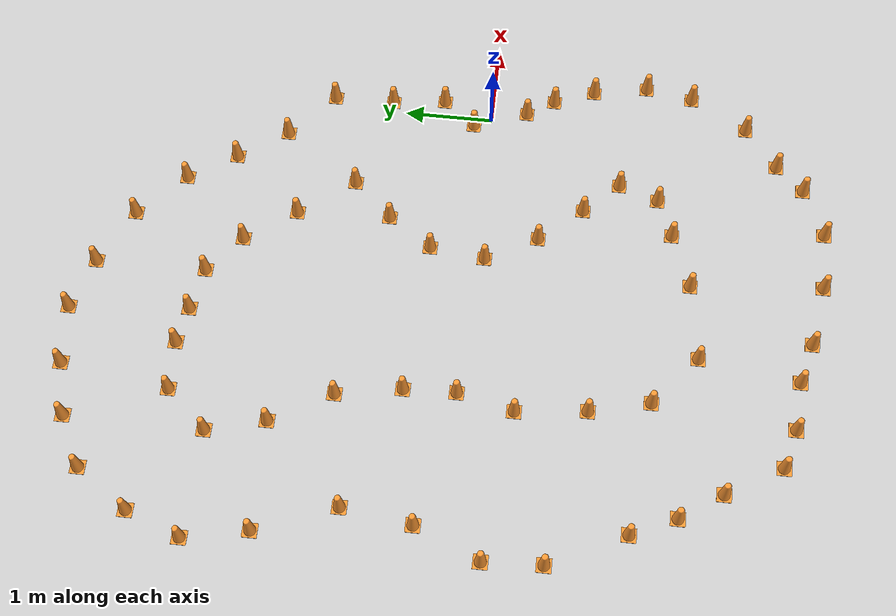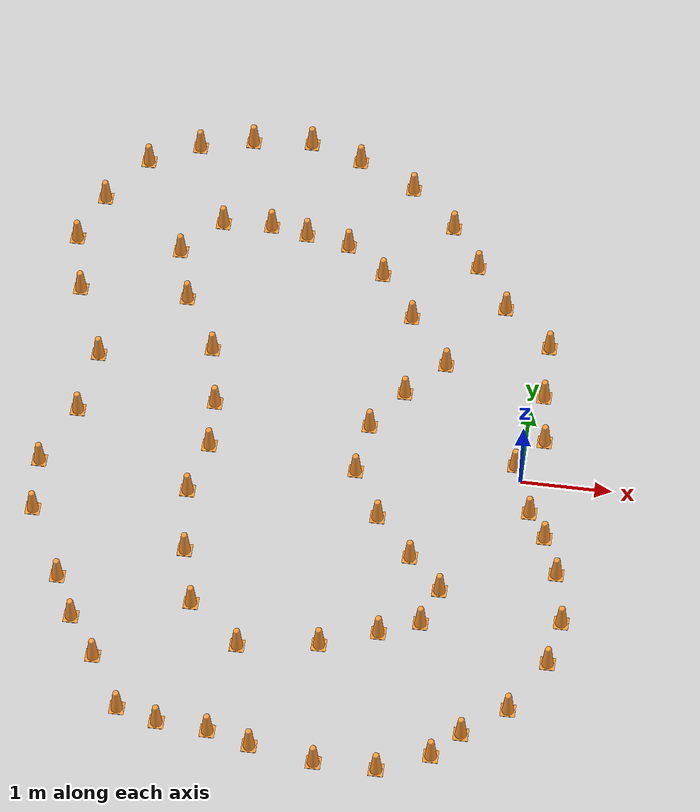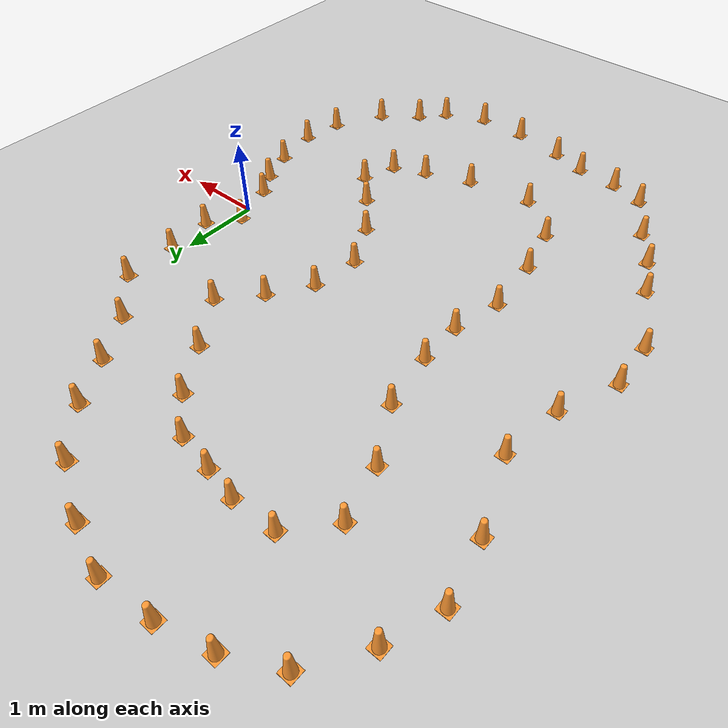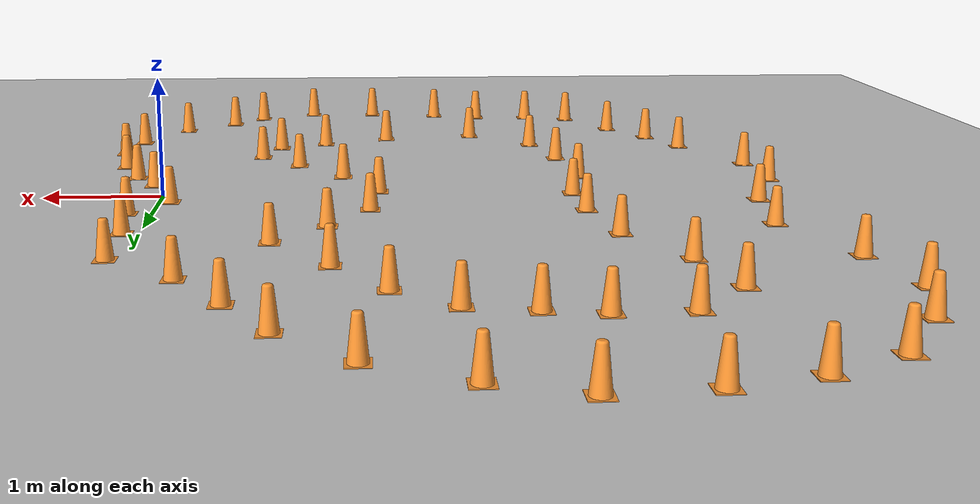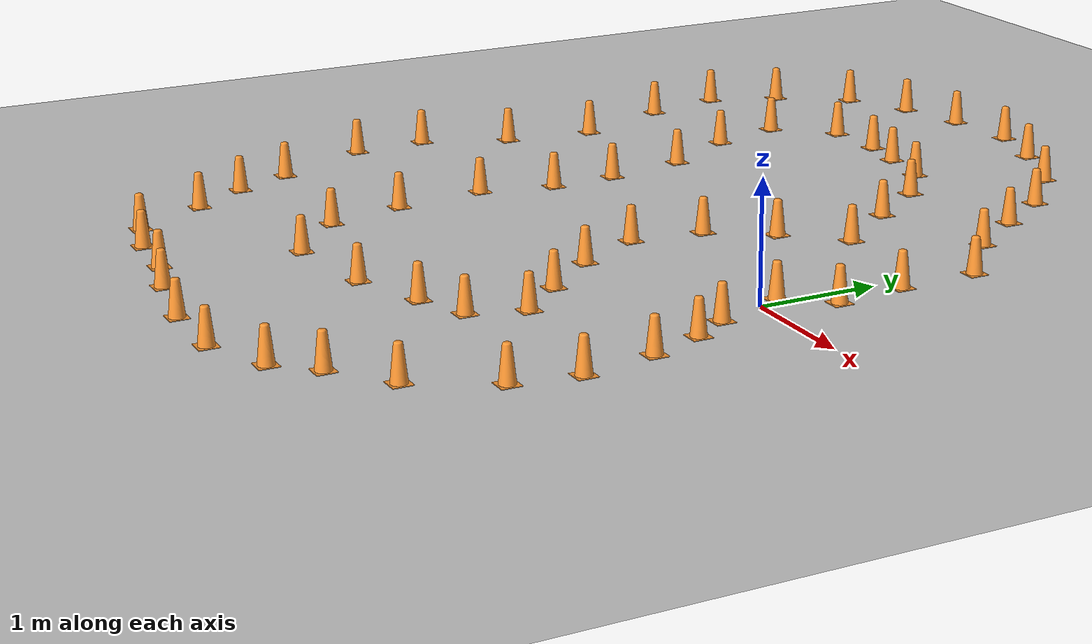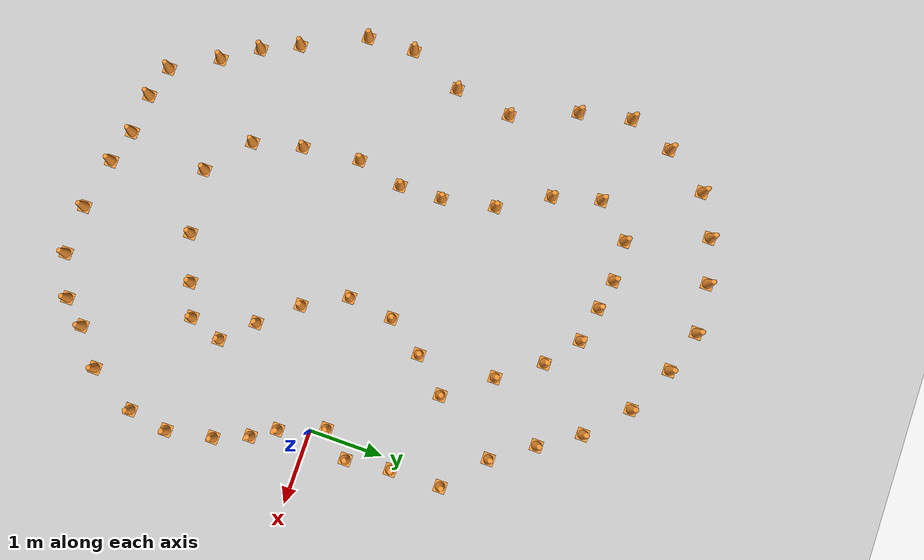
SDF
<sdf version="1.7">
 <world name="default">
  <light name="sun" type="directional">
   <pose>0 0 10 0 -0 0</pose>
   <diffuse>0.8 0.8 0.8 1</diffuse>
   <specular>0.2 0.2 0.2 1</specular>
   <attenuation>
    <range>1000</range>
    <constant>0.9</constant>
    <linear>0.01</linear>
    <quadratic>0.001</quadratic>
   </attenuation>
   <direction>-0.5 0.1 -0.9</direction>
   <spot><inner_angle>0</inner_angle><outer_angle>0</outer_angle><falloff>0</falloff></spot>
  </light>
  <model name="ground_plane">
   <static>1</static>
   <link name="link">
    <collision name="collision">
     <geometry><plane><normal>0 0 1</normal><size>100 100</size></plane></geometry>
     <surface>
      <contact><collide_bitmask>65535</collide_bitmask></contact>
      <friction><ode><mu>100</mu><mu2>50</mu2></ode></friction>
     </surface>
    </collision>
    <visual name="visual">
     <cast_shadows>0</cast_shadows>
     <geometry><plane><normal>0 0 1</normal><size>100 100</size></plane></geometry>
     <material>
      <script><uri>file://media/materials/scripts/gazebo.material</uri><name>Gazebo/Grey</name></script>
     </material>
    </visual>
   </link>
  </model>
  <gravity>0 0 -9.8</gravity>
  <magnetic_field>6e-06 2.3e-05 -4.2e-05</magnetic_field>
  <atmosphere type="adiabatic"/>
  <physics type="ode">
   <max_step_size>0.001</max_step_size>
   <real_time_factor>1</real_time_factor>
   <real_time_update_rate>1000</real_time_update_rate>
  </physics>
  <scene><ambient>0.4 0.4 0.4 1</ambient><background>0.7 0.7 0.7 1</background><shadows>1</shadows></scene>
  <spherical_coordinates>
   <surface_model>EARTH_WGS84</surface_model>
   <latitude_deg>0</latitude_deg>
   <longitude_deg>0</longitude_deg>
   <elevation>0</elevation>
   <heading_deg>0</heading_deg>
  </spherical_coordinates>
  <model name="cone">
   <pose>-2.78491 -2.52683 0.004991 1.5708 8e-06 1.2e-05</pose>
   <static>0</static>
   <link name="cone_link">
    <inertial>
     <mass>1</mass>
     <inertia><ixx>0.083</ixx><ixy>0</ixy><ixz>0</ixz><iyy>0.083</iyy><iyz>0</iyz><izz>0.083</izz></inertia>
    </inertial>
    <visual name="cone_visual">
     <material>
      <ambient>1 0.6 0.2 1</ambient>
      <diffuse>1 0.6 0.2 1</diffuse>
      <specular>0 0 0 0</specular>
      <emissive>0 0 0 1</emissive>
     </material>
     <geometry><mesh><uri>model://good_cone/meshes/cone.stl</uri><scale>0.001 0.001 0.001</scale></mesh></geometry>
    </visual>
    <collision name="cone_collision">
     <geometry><mesh><uri>model://good_cone/meshes/cone.stl</uri><scale>0.001 0.001 0.001</scale></mesh></geometry>
    </collision>
   </link>
  </model>
  <model name="cone_clone">
   <pose>-3.3555 -2.05031 0.005 1.5708 -0 8e-06</pose>
   <static>0</static>
   <link name="cone_link">
    <inertial>
     <mass>1</mass>
     <inertia><ixx>0.083</ixx><ixy>0</ixy><ixz>0</ixz><iyy>0.083</iyy><iyz>0</iyz><izz>0.083</izz></inertia>
    </inertial>
    <visual name="cone_visual">
     <material>
      <ambient>1 0.6 0.2 1</ambient>
      <diffuse>1 0.6 0.2 1</diffuse>
      <specular>0 0 0 0</specular>
      <emissive>0 0 0 1</emissive>
     </material>
     <geometry><mesh><uri>model://good_cone/meshes/cone.stl</uri><scale>0.001 0.001 0.001</scale></mesh></geometry>
    </visual>
    <collision name="cone_collision">
     <geometry><mesh><uri>model://good_cone/meshes/cone.stl</uri><scale>0.001 0.001 0.001</scale></mesh></geometry>
    </collision>
   </link>
  </model>
  <model name="cone_clone_0">
   <pose>-3.52375 -1.38131 0.004993 1.57079 3e-06 1.4e-05</pose>
   <static>0</static>
   <link name="cone_link">
    <inertial>
     <mass>1</mass>
     <inertia><ixx>0.083</ixx><ixy>0</ixy><ixz>0</ixz><iyy>0.083</iyy><iyz>0</iyz><izz>0.083</izz></inertia>
    </inertial>
    <visual name="cone_visual">
     <material>
      <ambient>1 0.6 0.2 1</ambient>
      <diffuse>1 0.6 0.2 1</diffuse>
      <specular>0 0 0 0</specular>
      <emissive>0 0 0 1</emissive>
     </material>
     <geometry><mesh><uri>model://good_cone/meshes/cone.stl</uri><scale>0.001 0.001 0.001</scale></mesh></geometry>
    </visual>
    <collision name="cone_collision">
     <geometry><mesh><uri>model://good_cone/meshes/cone.stl</uri><scale>0.001 0.001 0.001</scale></mesh></geometry>
    </collision>
   </link>
  </model>
  <model name="cone_clone_1">
   <pose>-3.61007 -0.599062 0.005 1.5708 -0 2.2e-05</pose>
   <static>0</static>
   <link name="cone_link">
    <inertial>
     <mass>1</mass>
     <inertia><ixx>0.083</ixx><ixy>0</ixy><ixz>0</ixz><iyy>0.083</iyy><iyz>0</iyz><izz>0.083</izz></inertia>
    </inertial>
    <visual name="cone_visual">
     <material>
      <ambient>1 0.6 0.2 1</ambient>
      <diffuse>1 0.6 0.2 1</diffuse>
      <specular>0 0 0 0</specular>
      <emissive>0 0 0 1</emissive>
     </material>
     <geometry><mesh><uri>model://good_cone/meshes/cone.stl</uri><scale>0.001 0.001 0.001</scale></mesh></geometry>
    </visual>
    <collision name="cone_collision">
     <geometry><mesh><uri>model://good_cone/meshes/cone.stl</uri><scale>0.001 0.001 0.001</scale></mesh></geometry>
    </collision>
   </link>
  </model>
  <model name="cone_clone_2">
   <pose>-3.46223 0.03074 0.005 1.5708 -4e-06 3e-06</pose>
   <static>0</static>
   <link name="cone_link">
    <inertial>
     <mass>1</mass>
     <inertia><ixx>0.083</ixx><ixy>0</ixy><ixz>0</ixz><iyy>0.083</iyy><iyz>0</iyz><izz>0.083</izz></inertia>
    </inertial>
    <visual name="cone_visual">
     <material>
      <ambient>1 0.6 0.2 1</ambient>
      <diffuse>1 0.6 0.2 1</diffuse>
      <specular>0 0 0 0</specular>
      <emissive>0 0 0 1</emissive>
     </material>
     <geometry><mesh><uri>model://good_cone/meshes/cone.stl</uri><scale>0.001 0.001 0.001</scale></mesh></geometry>
    </visual>
    <collision name="cone_collision">
     <geometry><mesh><uri>model://good_cone/meshes/cone.stl</uri><scale>0.001 0.001 0.001</scale></mesh></geometry>
    </collision>
   </link>
  </model>
  <model name="cone_clone_3">
   <pose>-3.48315 0.60871 0.004999 1.57079 -3e-06 1.8e-05</pose>
   <static>0</static>
   <link name="cone_link">
    <inertial>
     <mass>1</mass>
     <inertia><ixx>0.083</ixx><ixy>0</ixy><ixz>0</ixz><iyy>0.083</iyy><iyz>0</iyz><izz>0.083</izz></inertia>
    </inertial>
    <visual name="cone_visual">
     <material>
      <ambient>1 0.6 0.2 1</ambient>
      <diffuse>1 0.6 0.2 1</diffuse>
      <specular>0 0 0 0</specular>
      <emissive>0 0 0 1</emissive>
     </material>
     <geometry><mesh><uri>model://good_cone/meshes/cone.stl</uri><scale>0.001 0.001 0.001</scale></mesh></geometry>
    </visual>
    <collision name="cone_collision">
     <geometry><mesh><uri>model://good_cone/meshes/cone.stl</uri><scale>0.001 0.001 0.001</scale></mesh></geometry>
    </collision>
   </link>
  </model>
  <model name="cone_clone_4">
   <pose>-3.61662 1.33165 0.004999 1.57079 -4e-06 9e-06</pose>
   <static>0</static>
   <link name="cone_link">
    <inertial>
     <mass>1</mass>
     <inertia><ixx>0.083</ixx><ixy>0</ixy><ixz>0</ixz><iyy>0.083</iyy><iyz>0</iyz><izz>0.083</izz></inertia>
    </inertial>
    <visual name="cone_visual">
     <material>
      <ambient>1 0.6 0.2 1</ambient>
      <diffuse>1 0.6 0.2 1</diffuse>
      <specular>0 0 0 0</specular>
      <emissive>0 0 0 1</emissive>
     </material>
     <geometry><mesh><uri>model://good_cone/meshes/cone.stl</uri><scale>0.001 0.001 0.001</scale></mesh></geometry>
    </visual>
    <collision name="cone_collision">
     <geometry><mesh><uri>model://good_cone/meshes/cone.stl</uri><scale>0.001 0.001 0.001</scale></mesh></geometry>
    </collision>
   </link>
  </model>
  <model name="cone_clone_5">
   <pose>-4 2 0.005 1.5708 -5e-06 1.6e-05</pose>
   <static>0</static>
   <link name="cone_link">
    <inertial>
     <mass>1</mass>
     <inertia><ixx>0.083</ixx><ixy>0</ixy><ixz>0</ixz><iyy>0.083</iyy><iyz>0</iyz><izz>0.083</izz></inertia>
    </inertial>
    <visual name="cone_visual">
     <material>
      <ambient>1 0.6 0.2 1</ambient>
      <diffuse>1 0.6 0.2 1</diffuse>
      <specular>0 0 0 0</specular>
      <emissive>0 0 0 1</emissive>
     </material>
     <geometry><mesh><uri>model://good_cone/meshes/cone.stl</uri><scale>0.001 0.001 0.001</scale></mesh></geometry>
    </visual>
    <collision name="cone_collision">
     <geometry><mesh><uri>model://good_cone/meshes/cone.stl</uri><scale>0.001 0.001 0.001</scale></mesh></geometry>
    </collision>
   </link>
  </model>
  <model name="cone_clone_6">
   <pose>-4.17535 2.64912 0.005 1.5708 -0 1.2e-05</pose>
   <static>0</static>
   <link name="cone_link">
    <inertial>
     <mass>1</mass>
     <inertia><ixx>0.083</ixx><ixy>0</ixy><ixz>0</ixz><iyy>0.083</iyy><iyz>0</iyz><izz>0.083</izz></inertia>
    </inertial>
    <visual name="cone_visual">
     <material>
      <ambient>1 0.6 0.2 1</ambient>
      <diffuse>1 0.6 0.2 1</diffuse>
      <specular>0 0 0 0</specular>
      <emissive>0 0 0 1</emissive>
     </material>
     <geometry><mesh><uri>model://good_cone/meshes/cone.stl</uri><scale>0.001 0.001 0.001</scale></mesh></geometry>
    </visual>
    <collision name="cone_collision">
     <geometry><mesh><uri>model://good_cone/meshes/cone.stl</uri><scale>0.001 0.001 0.001</scale></mesh></geometry>
    </collision>
   </link>
  </model>
  <model name="cone_clone_7">
   <pose>-3.75192 3.11204 0.005 1.5708 -0 1.1e-05</pose>
   <static>0</static>
   <link name="cone_link">
    <inertial>
     <mass>1</mass>
     <inertia><ixx>0.083</ixx><ixy>0</ixy><ixz>0</ixz><iyy>0.083</iyy><iyz>0</iyz><izz>0.083</izz></inertia>
    </inertial>
    <visual name="cone_visual">
     <material>
      <ambient>1 0.6 0.2 1</ambient>
      <diffuse>1 0.6 0.2 1</diffuse>
      <specular>0 0 0 0</specular>
      <emissive>0 0 0 1</emissive>
     </material>
     <geometry><mesh><uri>model://good_cone/meshes/cone.stl</uri><scale>0.001 0.001 0.001</scale></mesh></geometry>
    </visual>
    <collision name="cone_collision">
     <geometry><mesh><uri>model://good_cone/meshes/cone.stl</uri><scale>0.001 0.001 0.001</scale></mesh></geometry>
    </collision>
   </link>
  </model>
  <model name="cone_clone_8">
   <pose>-3.19866 3.1344 0.004999 1.57079 -3e-06 3.7e-05</pose>
   <static>0</static>
   <link name="cone_link">
    <inertial>
     <mass>1</mass>
     <inertia><ixx>0.083</ixx><ixy>0</ixy><ixz>0</ixz><iyy>0.083</iyy><iyz>0</iyz><izz>0.083</izz></inertia>
    </inertial>
    <visual name="cone_visual">
     <material>
      <ambient>1 0.6 0.2 1</ambient>
      <diffuse>1 0.6 0.2 1</diffuse>
      <specular>0 0 0 0</specular>
      <emissive>0 0 0 1</emissive>
     </material>
     <geometry><mesh><uri>model://good_cone/meshes/cone.stl</uri><scale>0.001 0.001 0.001</scale></mesh></geometry>
    </visual>
    <collision name="cone_collision">
     <geometry><mesh><uri>model://good_cone/meshes/cone.stl</uri><scale>0.001 0.001 0.001</scale></mesh></geometry>
    </collision>
   </link>
  </model>
  <model name="cone_clone_9">
   <pose>-2.29404 2.96981 0.005 1.5708 -0 1.5e-05</pose>
   <static>0</static>
   <link name="cone_link">
    <inertial>
     <mass>1</mass>
     <inertia><ixx>0.083</ixx><ixy>0</ixy><ixz>0</ixz><iyy>0.083</iyy><iyz>0</iyz><izz>0.083</izz></inertia>
    </inertial>
    <visual name="cone_visual">
     <material>
      <ambient>1 0.6 0.2 1</ambient>
      <diffuse>1 0.6 0.2 1</diffuse>
      <specular>0 0 0 0</specular>
      <emissive>0 0 0 1</emissive>
     </material>
     <geometry><mesh><uri>model://good_cone/meshes/cone.stl</uri><scale>0.001 0.001 0.001</scale></mesh></geometry>
    </visual>
    <collision name="cone_collision">
     <geometry><mesh><uri>model://good_cone/meshes/cone.stl</uri><scale>0.001 0.001 0.001</scale></mesh></geometry>
    </collision>
   </link>
  </model>
  <model name="cone_clone_10">
   <pose>-2.78267 3.0606 0.004997 1.5708 -3e-06 1.1e-05</pose>
   <static>0</static>
   <link name="cone_link">
    <inertial>
     <mass>1</mass>
     <inertia><ixx>0.083</ixx><ixy>0</ixy><ixz>0</ixz><iyy>0.083</iyy><iyz>0</iyz><izz>0.083</izz></inertia>
    </inertial>
    <visual name="cone_visual">
     <material>
      <ambient>1 0.6 0.2 1</ambient>
      <diffuse>1 0.6 0.2 1</diffuse>
      <specular>0 0 0 0</specular>
      <emissive>0 0 0 1</emissive>
     </material>
     <geometry><mesh><uri>model://good_cone/meshes/cone.stl</uri><scale>0.001 0.001 0.001</scale></mesh></geometry>
    </visual>
    <collision name="cone_collision">
     <geometry><mesh><uri>model://good_cone/meshes/cone.stl</uri><scale>0.001 0.001 0.001</scale></mesh></geometry>
    </collision>
   </link>
  </model>
  <model name="cone_clone_11">
   <pose>-1.8554 2.61594 0.004999 1.57079 -5e-06 1.7e-05</pose>
   <static>0</static>
   <link name="cone_link">
    <inertial>
     <mass>1</mass>
     <inertia><ixx>0.083</ixx><ixy>0</ixy><ixz>0</ixz><iyy>0.083</iyy><iyz>0</iyz><izz>0.083</izz></inertia>
    </inertial>
    <visual name="cone_visual">
     <material>
      <ambient>1 0.6 0.2 1</ambient>
      <diffuse>1 0.6 0.2 1</diffuse>
      <specular>0 0 0 0</specular>
      <emissive>0 0 0 1</emissive>
     </material>
     <geometry><mesh><uri>model://good_cone/meshes/cone.stl</uri><scale>0.001 0.001 0.001</scale></mesh></geometry>
    </visual>
    <collision name="cone_collision">
     <geometry><mesh><uri>model://good_cone/meshes/cone.stl</uri><scale>0.001 0.001 0.001</scale></mesh></geometry>
    </collision>
   </link>
  </model>
  <model name="cone_clone_12">
   <pose>-1.45845 2.06115 0.004999 1.57079 -5e-06 1e-05</pose>
   <static>0</static>
   <link name="cone_link">
    <inertial>
     <mass>1</mass>
     <inertia><ixx>0.083</ixx><ixy>0</ixy><ixz>0</ixz><iyy>0.083</iyy><iyz>0</iyz><izz>0.083</izz></inertia>
    </inertial>
    <visual name="cone_visual">
     <material>
      <ambient>1 0.6 0.2 1</ambient>
      <diffuse>1 0.6 0.2 1</diffuse>
      <specular>0 0 0 0</specular>
      <emissive>0 0 0 1</emissive>
     </material>
     <geometry><mesh><uri>model://good_cone/meshes/cone.stl</uri><scale>0.001 0.001 0.001</scale></mesh></geometry>
    </visual>
    <collision name="cone_collision">
     <geometry><mesh><uri>model://good_cone/meshes/cone.stl</uri><scale>0.001 0.001 0.001</scale></mesh></geometry>
    </collision>
   </link>
  </model>
  <model name="cone_clone_13">
   <pose>-1 1.45664 0.004999 1.57079 -3e-06 1.9e-05</pose>
   <static>0</static>
   <link name="cone_link">
    <inertial>
     <mass>1</mass>
     <inertia><ixx>0.083</ixx><ixy>0</ixy><ixz>0</ixz><iyy>0.083</iyy><iyz>0</iyz><izz>0.083</izz></inertia>
    </inertial>
    <visual name="cone_visual">
     <material>
      <ambient>1 0.6 0.2 1</ambient>
      <diffuse>1 0.6 0.2 1</diffuse>
      <specular>0 0 0 0</specular>
      <emissive>0 0 0 1</emissive>
     </material>
     <geometry><mesh><uri>model://good_cone/meshes/cone.stl</uri><scale>0.001 0.001 0.001</scale></mesh></geometry>
    </visual>
    <collision name="cone_collision">
     <geometry><mesh><uri>model://good_cone/meshes/cone.stl</uri><scale>0.001 0.001 0.001</scale></mesh></geometry>
    </collision>
   </link>
  </model>
  <model name="cone_clone_14">
   <pose>-1.40885 1.01376 0.005 1.5708 -0 7e-06</pose>
   <static>0</static>
   <link name="cone_link">
    <inertial>
     <mass>1</mass>
     <inertia><ixx>0.083</ixx><ixy>0</ixy><ixz>0</ixz><iyy>0.083</iyy><iyz>0</iyz><izz>0.083</izz></inertia>
    </inertial>
    <visual name="cone_visual">
     <material>
      <ambient>1 0.6 0.2 1</ambient>
      <diffuse>1 0.6 0.2 1</diffuse>
      <specular>0 0 0 0</specular>
      <emissive>0 0 0 1</emissive>
     </material>
     <geometry><mesh><uri>model://good_cone/meshes/cone.stl</uri><scale>0.001 0.001 0.001</scale></mesh></geometry>
    </visual>
    <collision name="cone_collision">
     <geometry><mesh><uri>model://good_cone/meshes/cone.stl</uri><scale>0.001 0.001 0.001</scale></mesh></geometry>
    </collision>
   </link>
  </model>
  <model name="cone_clone_15">
   <pose>-1.74125 0.515719 0.004999 1.57079 -3e-06 3.8e-05</pose>
   <static>0</static>
   <link name="cone_link">
    <inertial>
     <mass>1</mass>
     <inertia><ixx>0.083</ixx><ixy>0</ixy><ixz>0</ixz><iyy>0.083</iyy><iyz>0</iyz><izz>0.083</izz></inertia>
    </inertial>
    <visual name="cone_visual">
     <material>
      <ambient>1 0.6 0.2 1</ambient>
      <diffuse>1 0.6 0.2 1</diffuse>
      <specular>0 0 0 0</specular>
      <emissive>0 0 0 1</emissive>
     </material>
     <geometry><mesh><uri>model://good_cone/meshes/cone.stl</uri><scale>0.001 0.001 0.001</scale></mesh></geometry>
    </visual>
    <collision name="cone_collision">
     <geometry><mesh><uri>model://good_cone/meshes/cone.stl</uri><scale>0.001 0.001 0.001</scale></mesh></geometry>
    </collision>
   </link>
  </model>
  <model name="cone_clone_16">
   <pose>-1.81694 -0.102662 0.004999 1.57079 -4e-06 9e-06</pose>
   <static>0</static>
   <link name="cone_link">
    <inertial>
     <mass>1</mass>
     <inertia><ixx>0.083</ixx><ixy>0</ixy><ixz>0</ixz><iyy>0.083</iyy><iyz>0</iyz><izz>0.083</izz></inertia>
    </inertial>
    <visual name="cone_visual">
     <material>
      <ambient>1 0.6 0.2 1</ambient>
      <diffuse>1 0.6 0.2 1</diffuse>
      <specular>0 0 0 0</specular>
      <emissive>0 0 0 1</emissive>
     </material>
     <geometry><mesh><uri>model://good_cone/meshes/cone.stl</uri><scale>0.001 0.001 0.001</scale></mesh></geometry>
    </visual>
    <collision name="cone_collision">
     <geometry><mesh><uri>model://good_cone/meshes/cone.stl</uri><scale>0.001 0.001 0.001</scale></mesh></geometry>
    </collision>
   </link>
  </model>
  <model name="cone_clone_17">
   <pose>-1.5022 -0.676299 0.004999 1.57079 -3e-06 1.4e-05</pose>
   <static>0</static>
   <link name="cone_link">
    <inertial>
     <mass>1</mass>
     <inertia><ixx>0.083</ixx><ixy>0</ixy><ixz>0</ixz><iyy>0.083</iyy><iyz>0</iyz><izz>0.083</izz></inertia>
    </inertial>
    <visual name="cone_visual">
     <material>
      <ambient>1 0.6 0.2 1</ambient>
      <diffuse>1 0.6 0.2 1</diffuse>
      <specular>0 0 0 0</specular>
      <emissive>0 0 0 1</emissive>
     </material>
     <geometry><mesh><uri>model://good_cone/meshes/cone.stl</uri><scale>0.001 0.001 0.001</scale></mesh></geometry>
    </visual>
    <collision name="cone_collision">
     <geometry><mesh><uri>model://good_cone/meshes/cone.stl</uri><scale>0.001 0.001 0.001</scale></mesh></geometry>
    </collision>
   </link>
  </model>
  <model name="cone_clone_18">
   <pose>-1.08782 -1.15503 0.004991 1.5708 4e-06 9e-06</pose>
   <static>0</static>
   <link name="cone_link">
    <inertial>
     <mass>1</mass>
     <inertia><ixx>0.083</ixx><ixy>0</ixy><ixz>0</ixz><iyy>0.083</iyy><iyz>0</iyz><izz>0.083</izz></inertia>
    </inertial>
    <visual name="cone_visual">
     <material>
      <ambient>1 0.6 0.2 1</ambient>
      <diffuse>1 0.6 0.2 1</diffuse>
      <specular>0 0 0 0</specular>
      <emissive>0 0 0 1</emissive>
     </material>
     <geometry><mesh><uri>model://good_cone/meshes/cone.stl</uri><scale>0.001 0.001 0.001</scale></mesh></geometry>
    </visual>
    <collision name="cone_collision">
     <geometry><mesh><uri>model://good_cone/meshes/cone.stl</uri><scale>0.001 0.001 0.001</scale></mesh></geometry>
    </collision>
   </link>
  </model>
  <model name="cone_clone_19">
   <pose>-0.7177 -1.54234 0.004998 1.5708 -0 1e-06</pose>
   <static>0</static>
   <link name="cone_link">
    <inertial>
     <mass>1</mass>
     <inertia><ixx>0.083</ixx><ixy>0</ixy><ixz>0</ixz><iyy>0.083</iyy><iyz>0</iyz><izz>0.083</izz></inertia>
    </inertial>
    <visual name="cone_visual">
     <material>
      <ambient>1 0.6 0.2 1</ambient>
      <diffuse>1 0.6 0.2 1</diffuse>
      <specular>0 0 0 0</specular>
      <emissive>0 0 0 1</emissive>
     </material>
     <geometry><mesh><uri>model://good_cone/meshes/cone.stl</uri><scale>0.001 0.001 0.001</scale></mesh></geometry>
    </visual>
    <collision name="cone_collision">
     <geometry><mesh><uri>model://good_cone/meshes/cone.stl</uri><scale>0.001 0.001 0.001</scale></mesh></geometry>
    </collision>
   </link>
  </model>
  <model name="cone_clone_20">
   <pose>-0.869473 -1.9873 0.005 1.5708 0 6e-06</pose>
   <static>0</static>
   <link name="cone_link">
    <inertial>
     <mass>1</mass>
     <inertia><ixx>0.083</ixx><ixy>0</ixy><ixz>0</ixz><iyy>0.083</iyy><iyz>0</iyz><izz>0.083</izz></inertia>
    </inertial>
    <visual name="cone_visual">
     <material>
      <ambient>1 0.6 0.2 1</ambient>
      <diffuse>1 0.6 0.2 1</diffuse>
      <specular>0 0 0 0</specular>
      <emissive>0 0 0 1</emissive>
     </material>
     <geometry><mesh><uri>model://good_cone/meshes/cone.stl</uri><scale>0.001 0.001 0.001</scale></mesh></geometry>
    </visual>
    <collision name="cone_collision">
     <geometry><mesh><uri>model://good_cone/meshes/cone.stl</uri><scale>0.001 0.001 0.001</scale></mesh></geometry>
    </collision>
   </link>
  </model>
  <model name="cone_clone_21">
   <pose>-1.30309 -2.16912 0.004999 1.57079 -3e-06 1.4e-05</pose>
   <static>0</static>
   <link name="cone_link">
    <inertial>
     <mass>1</mass>
     <inertia><ixx>0.083</ixx><ixy>0</ixy><ixz>0</ixz><iyy>0.083</iyy><iyz>0</iyz><izz>0.083</izz></inertia>
    </inertial>
    <visual name="cone_visual">
     <material>
      <ambient>1 0.6 0.2 1</ambient>
      <diffuse>1 0.6 0.2 1</diffuse>
      <specular>0 0 0 0</specular>
      <emissive>0 0 0 1</emissive>
     </material>
     <geometry><mesh><uri>model://good_cone/meshes/cone.stl</uri><scale>0.001 0.001 0.001</scale></mesh></geometry>
    </visual>
    <collision name="cone_collision">
     <geometry><mesh><uri>model://good_cone/meshes/cone.stl</uri><scale>0.001 0.001 0.001</scale></mesh></geometry>
    </collision>
   </link>
  </model>
  <model name="cone_clone_22">
   <pose>-1.91642 -2.40087 0.004999 1.57079 -3e-06 1.1e-05</pose>
   <static>0</static>
   <link name="cone_link">
    <inertial>
     <mass>1</mass>
     <inertia><ixx>0.083</ixx><ixy>0</ixy><ixz>0</ixz><iyy>0.083</iyy><iyz>0</iyz><izz>0.083</izz></inertia>
    </inertial>
    <visual name="cone_visual">
     <material>
      <ambient>1 0.6 0.2 1</ambient>
      <diffuse>1 0.6 0.2 1</diffuse>
      <specular>0 0 0 0</specular>
      <emissive>0 0 0 1</emissive>
     </material>
     <geometry><mesh><uri>model://good_cone/meshes/cone.stl</uri><scale>0.001 0.001 0.001</scale></mesh></geometry>
    </visual>
    <collision name="cone_collision">
     <geometry><mesh><uri>model://good_cone/meshes/cone.stl</uri><scale>0.001 0.001 0.001</scale></mesh></geometry>
    </collision>
   </link>
  </model>
  <model name="cone_clone_23">
   <pose>-0.087243 0.192954 0.004999 1.57079 -5e-06 1.4e-05</pose>
   <static>0</static>
   <link name="cone_link">
    <inertial>
     <mass>1</mass>
     <inertia><ixx>0.083</ixx><ixy>0</ixy><ixz>0</ixz><iyy>0.083</iyy><iyz>0</iyz><izz>0.083</izz></inertia>
    </inertial>
    <visual name="cone_visual">
     <material>
      <ambient>1 0.6 0.2 1</ambient>
      <diffuse>1 0.6 0.2 1</diffuse>
      <specular>0 0 0 0</specular>
      <emissive>0 0 0 1</emissive>
     </material>
     <geometry><mesh><uri>model://good_cone/meshes/cone.stl</uri><scale>0.001 0.001 0.001</scale></mesh></geometry>
    </visual>
    <collision name="cone_collision">
     <geometry><mesh><uri>model://good_cone/meshes/cone.stl</uri><scale>0.001 0.001 0.001</scale></mesh></geometry>
    </collision>
   </link>
  </model>
  <model name="cone_clone_24">
   <pose>0.200527 0.560924 0.004999 1.57079 -3e-06 3.4e-05</pose>
   <static>0</static>
   <link name="cone_link">
    <inertial>
     <mass>1</mass>
     <inertia><ixx>0.083</ixx><ixy>0</ixy><ixz>0</ixz><iyy>0.083</iyy><iyz>0</iyz><izz>0.083</izz></inertia>
    </inertial>
    <visual name="cone_visual">
     <material>
      <ambient>1 0.6 0.2 1</ambient>
      <diffuse>1 0.6 0.2 1</diffuse>
      <specular>0 0 0 0</specular>
      <emissive>0 0 0 1</emissive>
     </material>
     <geometry><mesh><uri>model://good_cone/meshes/cone.stl</uri><scale>0.001 0.001 0.001</scale></mesh></geometry>
    </visual>
    <collision name="cone_collision">
     <geometry><mesh><uri>model://good_cone/meshes/cone.stl</uri><scale>0.001 0.001 0.001</scale></mesh></geometry>
    </collision>
   </link>
  </model>
  <model name="cone_clone_25">
   <pose>0.131548 1.16236 0.005 1.5708 2e-06 7e-06</pose>
   <static>0</static>
   <link name="cone_link">
    <inertial>
     <mass>1</mass>
     <inertia><ixx>0.083</ixx><ixy>0</ixy><ixz>0</ixz><iyy>0.083</iyy><iyz>0</iyz><izz>0.083</izz></inertia>
    </inertial>
    <visual name="cone_visual">
     <material>
      <ambient>1 0.6 0.2 1</ambient>
      <diffuse>1 0.6 0.2 1</diffuse>
      <specular>0 0 0 0</specular>
      <emissive>0 0 0 1</emissive>
     </material>
     <geometry><mesh><uri>model://good_cone/meshes/cone.stl</uri><scale>0.001 0.001 0.001</scale></mesh></geometry>
    </visual>
    <collision name="cone_collision">
     <geometry><mesh><uri>model://good_cone/meshes/cone.stl</uri><scale>0.001 0.001 0.001</scale></mesh></geometry>
    </collision>
   </link>
  </model>
  <model name="cone_clone_26">
   <pose>0.118113 1.84346 0.005 1.5708 -0 3e-06</pose>
   <static>0</static>
   <link name="cone_link">
    <inertial>
     <mass>1</mass>
     <inertia><ixx>0.083</ixx><ixy>0</ixy><ixz>0</ixz><iyy>0.083</iyy><iyz>0</iyz><izz>0.083</izz></inertia>
    </inertial>
    <visual name="cone_visual">
     <material>
      <ambient>1 0.6 0.2 1</ambient>
      <diffuse>1 0.6 0.2 1</diffuse>
      <specular>0 0 0 0</specular>
      <emissive>0 0 0 1</emissive>
     </material>
     <geometry><mesh><uri>model://good_cone/meshes/cone.stl</uri><scale>0.001 0.001 0.001</scale></mesh></geometry>
    </visual>
    <collision name="cone_collision">
     <geometry><mesh><uri>model://good_cone/meshes/cone.stl</uri><scale>0.001 0.001 0.001</scale></mesh></geometry>
    </collision>
   </link>
  </model>
  <model name="cone_clone_27">
   <pose>-0.425479 2.32124 0.004999 1.57079 -3e-06 1.2e-05</pose>
   <static>0</static>
   <link name="cone_link">
    <inertial>
     <mass>1</mass>
     <inertia><ixx>0.083</ixx><ixy>0</ixy><ixz>0</ixz><iyy>0.083</iyy><iyz>0</iyz><izz>0.083</izz></inertia>
    </inertial>
    <visual name="cone_visual">
     <material>
      <ambient>1 0.6 0.2 1</ambient>
      <diffuse>1 0.6 0.2 1</diffuse>
      <specular>0 0 0 0</specular>
      <emissive>0 0 0 1</emissive>
     </material>
     <geometry><mesh><uri>model://good_cone/meshes/cone.stl</uri><scale>0.001 0.001 0.001</scale></mesh></geometry>
    </visual>
    <collision name="cone_collision">
     <geometry><mesh><uri>model://good_cone/meshes/cone.stl</uri><scale>0.001 0.001 0.001</scale></mesh></geometry>
    </collision>
   </link>
  </model>
  <model name="cone_clone_28">
   <pose>-0.799692 2.85913 0.004991 1.5708 4e-06 1e-06</pose>
   <static>0</static>
   <link name="cone_link">
    <inertial>
     <mass>1</mass>
     <inertia><ixx>0.083</ixx><ixy>0</ixy><ixz>0</ixz><iyy>0.083</iyy><iyz>0</iyz><izz>0.083</izz></inertia>
    </inertial>
    <visual name="cone_visual">
     <material>
      <ambient>1 0.6 0.2 1</ambient>
      <diffuse>1 0.6 0.2 1</diffuse>
      <specular>0 0 0 0</specular>
      <emissive>0 0 0 1</emissive>
     </material>
     <geometry><mesh><uri>model://good_cone/meshes/cone.stl</uri><scale>0.001 0.001 0.001</scale></mesh></geometry>
    </visual>
    <collision name="cone_collision">
     <geometry><mesh><uri>model://good_cone/meshes/cone.stl</uri><scale>0.001 0.001 0.001</scale></mesh></geometry>
    </collision>
   </link>
  </model>
  <model name="cone_clone_29">
   <pose>-1.13889 3.38358 0.004999 1.57079 -3e-06 3.2e-05</pose>
   <static>0</static>
   <link name="cone_link">
    <inertial>
     <mass>1</mass>
     <inertia><ixx>0.083</ixx><ixy>0</ixy><ixz>0</ixz><iyy>0.083</iyy><iyz>0</iyz><izz>0.083</izz></inertia>
    </inertial>
    <visual name="cone_visual">
     <material>
      <ambient>1 0.6 0.2 1</ambient>
      <diffuse>1 0.6 0.2 1</diffuse>
      <specular>0 0 0 0</specular>
      <emissive>0 0 0 1</emissive>
     </material>
     <geometry><mesh><uri>model://good_cone/meshes/cone.stl</uri><scale>0.001 0.001 0.001</scale></mesh></geometry>
    </visual>
    <collision name="cone_collision">
     <geometry><mesh><uri>model://good_cone/meshes/cone.stl</uri><scale>0.001 0.001 0.001</scale></mesh></geometry>
    </collision>
   </link>
  </model>
  <model name="cone_clone_30">
   <pose>-1.66091 3.8791 0.004997 1.5708 -4e-06 1e-06</pose>
   <static>0</static>
   <link name="cone_link">
    <inertial>
     <mass>1</mass>
     <inertia><ixx>0.083</ixx><ixy>0</ixy><ixz>0</ixz><iyy>0.083</iyy><iyz>0</iyz><izz>0.083</izz></inertia>
    </inertial>
    <visual name="cone_visual">
     <material>
      <ambient>1 0.6 0.2 1</ambient>
      <diffuse>1 0.6 0.2 1</diffuse>
      <specular>0 0 0 0</specular>
      <emissive>0 0 0 1</emissive>
     </material>
     <geometry><mesh><uri>model://good_cone/meshes/cone.stl</uri><scale>0.001 0.001 0.001</scale></mesh></geometry>
    </visual>
    <collision name="cone_collision">
     <geometry><mesh><uri>model://good_cone/meshes/cone.stl</uri><scale>0.001 0.001 0.001</scale></mesh></geometry>
    </collision>
   </link>
  </model>
  <model name="cone_clone_31">
   <pose>-2.31337 4.19965 0.004997 1.5708 -3e-06 1e-06</pose>
   <static>0</static>
   <link name="cone_link">
    <inertial>
     <mass>1</mass>
     <inertia><ixx>0.083</ixx><ixy>0</ixy><ixz>0</ixz><iyy>0.083</iyy><iyz>0</iyz><izz>0.083</izz></inertia>
    </inertial>
    <visual name="cone_visual">
     <material>
      <ambient>1 0.6 0.2 1</ambient>
      <diffuse>1 0.6 0.2 1</diffuse>
      <specular>0 0 0 0</specular>
      <emissive>0 0 0 1</emissive>
     </material>
     <geometry><mesh><uri>model://good_cone/meshes/cone.stl</uri><scale>0.001 0.001 0.001</scale></mesh></geometry>
    </visual>
    <collision name="cone_collision">
     <geometry><mesh><uri>model://good_cone/meshes/cone.stl</uri><scale>0.001 0.001 0.001</scale></mesh></geometry>
    </collision>
   </link>
  </model>
  <model name="cone_clone_32">
   <pose>-2.90333 4.38608 0.004999 1.57079 -3e-06 2.4e-05</pose>
   <static>0</static>
   <link name="cone_link">
    <inertial>
     <mass>1</mass>
     <inertia><ixx>0.083</ixx><ixy>0</ixy><ixz>0</ixz><iyy>0.083</iyy><iyz>0</iyz><izz>0.083</izz></inertia>
    </inertial>
    <visual name="cone_visual">
     <material>
      <ambient>1 0.6 0.2 1</ambient>
      <diffuse>1 0.6 0.2 1</diffuse>
      <specular>0 0 0 0</specular>
      <emissive>0 0 0 1</emissive>
     </material>
     <geometry><mesh><uri>model://good_cone/meshes/cone.stl</uri><scale>0.001 0.001 0.001</scale></mesh></geometry>
    </visual>
    <collision name="cone_collision">
     <geometry><mesh><uri>model://good_cone/meshes/cone.stl</uri><scale>0.001 0.001 0.001</scale></mesh></geometry>
    </collision>
   </link>
  </model>
  <model name="cone_clone_33">
   <pose>-3.57475 4.32613 0.004999 1.57079 -3e-06 2.6e-05</pose>
   <static>0</static>
   <link name="cone_link">
    <inertial>
     <mass>1</mass>
     <inertia><ixx>0.083</ixx><ixy>0</ixy><ixz>0</ixz><iyy>0.083</iyy><iyz>0</iyz><izz>0.083</izz></inertia>
    </inertial>
    <visual name="cone_visual">
     <material>
      <ambient>1 0.6 0.2 1</ambient>
      <diffuse>1 0.6 0.2 1</diffuse>
      <specular>0 0 0 0</specular>
      <emissive>0 0 0 1</emissive>
     </material>
     <geometry><mesh><uri>model://good_cone/meshes/cone.stl</uri><scale>0.001 0.001 0.001</scale></mesh></geometry>
    </visual>
    <collision name="cone_collision">
     <geometry><mesh><uri>model://good_cone/meshes/cone.stl</uri><scale>0.001 0.001 0.001</scale></mesh></geometry>
    </collision>
   </link>
  </model>
  <model name="cone_clone_34">
   <pose>-4.17311 4.17317 0.005 1.5708 -0 2e-05</pose>
   <static>0</static>
   <link name="cone_link">
    <inertial>
     <mass>1</mass>
     <inertia><ixx>0.083</ixx><ixy>0</ixy><ixz>0</ixz><iyy>0.083</iyy><iyz>0</iyz><izz>0.083</izz></inertia>
    </inertial>
    <visual name="cone_visual">
     <material>
      <ambient>1 0.6 0.2 1</ambient>
      <diffuse>1 0.6 0.2 1</diffuse>
      <specular>0 0 0 0</specular>
      <emissive>0 0 0 1</emissive>
     </material>
     <geometry><mesh><uri>model://good_cone/meshes/cone.stl</uri><scale>0.001 0.001 0.001</scale></mesh></geometry>
    </visual>
    <collision name="cone_collision">
     <geometry><mesh><uri>model://good_cone/meshes/cone.stl</uri><scale>0.001 0.001 0.001</scale></mesh></geometry>
    </collision>
   </link>
  </model>
  <model name="cone_clone_35">
   <pose>-4.73072 3.88902 0.005 1.5708 2e-06 5e-06</pose>
   <static>0</static>
   <link name="cone_link">
    <inertial>
     <mass>1</mass>
     <inertia><ixx>0.083</ixx><ixy>0</ixy><ixz>0</ixz><iyy>0.083</iyy><iyz>0</iyz><izz>0.083</izz></inertia>
    </inertial>
    <visual name="cone_visual">
     <material>
      <ambient>1 0.6 0.2 1</ambient>
      <diffuse>1 0.6 0.2 1</diffuse>
      <specular>0 0 0 0</specular>
      <emissive>0 0 0 1</emissive>
     </material>
     <geometry><mesh><uri>model://good_cone/meshes/cone.stl</uri><scale>0.001 0.001 0.001</scale></mesh></geometry>
    </visual>
    <collision name="cone_collision">
     <geometry><mesh><uri>model://good_cone/meshes/cone.stl</uri><scale>0.001 0.001 0.001</scale></mesh></geometry>
    </collision>
   </link>
  </model>
  <model name="cone_clone_36">
   <pose>-5.13988 3.29793 0.005 1.5708 -4e-06 6e-06</pose>
   <static>0</static>
   <link name="cone_link">
    <inertial>
     <mass>1</mass>
     <inertia><ixx>0.083</ixx><ixy>0</ixy><ixz>0</ixz><iyy>0.083</iyy><iyz>0</iyz><izz>0.083</izz></inertia>
    </inertial>
    <visual name="cone_visual">
     <material>
      <ambient>1 0.6 0.2 1</ambient>
      <diffuse>1 0.6 0.2 1</diffuse>
      <specular>0 0 0 0</specular>
      <emissive>0 0 0 1</emissive>
     </material>
     <geometry><mesh><uri>model://good_cone/meshes/cone.stl</uri><scale>0.001 0.001 0.001</scale></mesh></geometry>
    </visual>
    <collision name="cone_collision">
     <geometry><mesh><uri>model://good_cone/meshes/cone.stl</uri><scale>0.001 0.001 0.001</scale></mesh></geometry>
    </collision>
   </link>
  </model>
  <model name="cone_clone_37">
   <pose>-5.36785 2.68939 0.004999 1.57079 -3e-06 2.1e-05</pose>
   <static>0</static>
   <link name="cone_link">
    <inertial>
     <mass>1</mass>
     <inertia><ixx>0.083</ixx><ixy>0</ixy><ixz>0</ixz><iyy>0.083</iyy><iyz>0</iyz><izz>0.083</izz></inertia>
    </inertial>
    <visual name="cone_visual">
     <material>
      <ambient>1 0.6 0.2 1</ambient>
      <diffuse>1 0.6 0.2 1</diffuse>
      <specular>0 0 0 0</specular>
      <emissive>0 0 0 1</emissive>
     </material>
     <geometry><mesh><uri>model://good_cone/meshes/cone.stl</uri><scale>0.001 0.001 0.001</scale></mesh></geometry>
    </visual>
    <collision name="cone_collision">
     <geometry><mesh><uri>model://good_cone/meshes/cone.stl</uri><scale>0.001 0.001 0.001</scale></mesh></geometry>
    </collision>
   </link>
  </model>
  <model name="cone_clone_38">
   <pose>-5.21551 1.98066 0.004999 1.57079 -5e-06 4e-06</pose>
   <static>0</static>
   <link name="cone_link">
    <inertial>
     <mass>1</mass>
     <inertia><ixx>0.083</ixx><ixy>0</ixy><ixz>0</ixz><iyy>0.083</iyy><iyz>0</iyz><izz>0.083</izz></inertia>
    </inertial>
    <visual name="cone_visual">
     <material>
      <ambient>1 0.6 0.2 1</ambient>
      <diffuse>1 0.6 0.2 1</diffuse>
      <specular>0 0 0 0</specular>
      <emissive>0 0 0 1</emissive>
     </material>
     <geometry><mesh><uri>model://good_cone/meshes/cone.stl</uri><scale>0.001 0.001 0.001</scale></mesh></geometry>
    </visual>
    <collision name="cone_collision">
     <geometry><mesh><uri>model://good_cone/meshes/cone.stl</uri><scale>0.001 0.001 0.001</scale></mesh></geometry>
    </collision>
   </link>
  </model>
  <model name="cone_clone_39">
   <pose>-4.86811 1.10059 0.005 1.5708 -0 1.8e-05</pose>
   <static>0</static>
   <link name="cone_link">
    <inertial>
     <mass>1</mass>
     <inertia><ixx>0.083</ixx><ixy>0</ixy><ixz>0</ixz><iyy>0.083</iyy><iyz>0</iyz><izz>0.083</izz></inertia>
    </inertial>
    <visual name="cone_visual">
     <material>
      <ambient>1 0.6 0.2 1</ambient>
      <diffuse>1 0.6 0.2 1</diffuse>
      <specular>0 0 0 0</specular>
      <emissive>0 0 0 1</emissive>
     </material>
     <geometry><mesh><uri>model://good_cone/meshes/cone.stl</uri><scale>0.001 0.001 0.001</scale></mesh></geometry>
    </visual>
    <collision name="cone_collision">
     <geometry><mesh><uri>model://good_cone/meshes/cone.stl</uri><scale>0.001 0.001 0.001</scale></mesh></geometry>
    </collision>
   </link>
  </model>
  <model name="cone_clone_40">
   <pose>-4.97842 0.31951 0.004999 1.57079 -3e-06 1.7e-05</pose>
   <static>0</static>
   <link name="cone_link">
    <inertial>
     <mass>1</mass>
     <inertia><ixx>0.083</ixx><ixy>0</ixy><ixz>0</ixz><iyy>0.083</iyy><iyz>0</iyz><izz>0.083</izz></inertia>
    </inertial>
    <visual name="cone_visual">
     <material>
      <ambient>1 0.6 0.2 1</ambient>
      <diffuse>1 0.6 0.2 1</diffuse>
      <specular>0 0 0 0</specular>
      <emissive>0 0 0 1</emissive>
     </material>
     <geometry><mesh><uri>model://good_cone/meshes/cone.stl</uri><scale>0.001 0.001 0.001</scale></mesh></geometry>
    </visual>
    <collision name="cone_collision">
     <geometry><mesh><uri>model://good_cone/meshes/cone.stl</uri><scale>0.001 0.001 0.001</scale></mesh></geometry>
    </collision>
   </link>
  </model>
  <model name="cone_clone_41">
   <pose>-5.28787 -0.410138 0.005 1.5708 -0 1.8e-05</pose>
   <static>0</static>
   <link name="cone_link">
    <inertial>
     <mass>1</mass>
     <inertia><ixx>0.083</ixx><ixy>0</ixy><ixz>0</ixz><iyy>0.083</iyy><iyz>0</iyz><izz>0.083</izz></inertia>
    </inertial>
    <visual name="cone_visual">
     <material>
      <ambient>1 0.6 0.2 1</ambient>
      <diffuse>1 0.6 0.2 1</diffuse>
      <specular>0 0 0 0</specular>
      <emissive>0 0 0 1</emissive>
     </material>
     <geometry><mesh><uri>model://good_cone/meshes/cone.stl</uri><scale>0.001 0.001 0.001</scale></mesh></geometry>
    </visual>
    <collision name="cone_collision">
     <geometry><mesh><uri>model://good_cone/meshes/cone.stl</uri><scale>0.001 0.001 0.001</scale></mesh></geometry>
    </collision>
   </link>
  </model>
  <model name="cone_clone_42">
   <pose>-5.25305 -1.05698 0.005 1.57079 -0 1e-06</pose>
   <static>0</static>
   <link name="cone_link">
    <inertial>
     <mass>1</mass>
     <inertia><ixx>0.083</ixx><ixy>0</ixy><ixz>0</ixz><iyy>0.083</iyy><iyz>0</iyz><izz>0.083</izz></inertia>
    </inertial>
    <visual name="cone_visual">
     <material>
      <ambient>1 0.6 0.2 1</ambient>
      <diffuse>1 0.6 0.2 1</diffuse>
      <specular>0 0 0 0</specular>
      <emissive>0 0 0 1</emissive>
     </material>
     <geometry><mesh><uri>model://good_cone/meshes/cone.stl</uri><scale>0.001 0.001 0.001</scale></mesh></geometry>
    </visual>
    <collision name="cone_collision">
     <geometry><mesh><uri>model://good_cone/meshes/cone.stl</uri><scale>0.001 0.001 0.001</scale></mesh></geometry>
    </collision>
   </link>
  </model>
  <model name="cone_clone_43">
   <pose>-4.84017 -1.89865 0.005 1.57079 -0 1e-06</pose>
   <static>0</static>
   <link name="cone_link">
    <inertial>
     <mass>1</mass>
     <inertia><ixx>0.083</ixx><ixy>0</ixy><ixz>0</ixz><iyy>0.083</iyy><iyz>0</iyz><izz>0.083</izz></inertia>
    </inertial>
    <visual name="cone_visual">
     <material>
      <ambient>1 0.6 0.2 1</ambient>
      <diffuse>1 0.6 0.2 1</diffuse>
      <specular>0 0 0 0</specular>
      <emissive>0 0 0 1</emissive>
     </material>
     <geometry><mesh><uri>model://good_cone/meshes/cone.stl</uri><scale>0.001 0.001 0.001</scale></mesh></geometry>
    </visual>
    <collision name="cone_collision">
     <geometry><mesh><uri>model://good_cone/meshes/cone.stl</uri><scale>0.001 0.001 0.001</scale></mesh></geometry>
    </collision>
   </link>
  </model>
  <model name="cone_clone_44">
   <pose>-4.61112 -2.39152 0.005 1.5708 -0 1e-06</pose>
   <static>0</static>
   <link name="cone_link">
    <inertial>
     <mass>1</mass>
     <inertia><ixx>0.083</ixx><ixy>0</ixy><ixz>0</ixz><iyy>0.083</iyy><iyz>0</iyz><izz>0.083</izz></inertia>
    </inertial>
    <visual name="cone_visual">
     <material>
      <ambient>1 0.6 0.2 1</ambient>
      <diffuse>1 0.6 0.2 1</diffuse>
      <specular>0 0 0 0</specular>
      <emissive>0 0 0 1</emissive>
     </material>
     <geometry><mesh><uri>model://good_cone/meshes/cone.stl</uri><scale>0.001 0.001 0.001</scale></mesh></geometry>
    </visual>
    <collision name="cone_collision">
     <geometry><mesh><uri>model://good_cone/meshes/cone.stl</uri><scale>0.001 0.001 0.001</scale></mesh></geometry>
    </collision>
   </link>
  </model>
  <model name="cone_clone_45">
   <pose>-4.29838 -2.85804 0.005 1.57079 -0 1e-06</pose>
   <static>0</static>
   <link name="cone_link">
    <inertial>
     <mass>1</mass>
     <inertia><ixx>0.083</ixx><ixy>0</ixy><ixz>0</ixz><iyy>0.083</iyy><iyz>0</iyz><izz>0.083</izz></inertia>
    </inertial>
    <visual name="cone_visual">
     <material>
      <ambient>1 0.6 0.2 1</ambient>
      <diffuse>1 0.6 0.2 1</diffuse>
      <specular>0 0 0 0</specular>
      <emissive>0 0 0 1</emissive>
     </material>
     <geometry><mesh><uri>model://good_cone/meshes/cone.stl</uri><scale>0.001 0.001 0.001</scale></mesh></geometry>
    </visual>
    <collision name="cone_collision">
     <geometry><mesh><uri>model://good_cone/meshes/cone.stl</uri><scale>0.001 0.001 0.001</scale></mesh></geometry>
    </collision>
   </link>
  </model>
  <model name="cone_clone_46">
   <pose>-3.93972 -3.47423 0.005 1.57079 -0 1e-06</pose>
   <static>0</static>
   <link name="cone_link">
    <inertial>
     <mass>1</mass>
     <inertia><ixx>0.083</ixx><ixy>0</ixy><ixz>0</ixz><iyy>0.083</iyy><iyz>0</iyz><izz>0.083</izz></inertia>
    </inertial>
    <visual name="cone_visual">
     <material>
      <ambient>1 0.6 0.2 1</ambient>
      <diffuse>1 0.6 0.2 1</diffuse>
      <specular>0 0 0 0</specular>
      <emissive>0 0 0 1</emissive>
     </material>
     <geometry><mesh><uri>model://good_cone/meshes/cone.stl</uri><scale>0.001 0.001 0.001</scale></mesh></geometry>
    </visual>
    <collision name="cone_collision">
     <geometry><mesh><uri>model://good_cone/meshes/cone.stl</uri><scale>0.001 0.001 0.001</scale></mesh></geometry>
    </collision>
   </link>
  </model>
  <model name="cone_clone_47">
   <pose>-3.49693 -3.59412 0.005 1.5708 -0 1e-06</pose>
   <static>0</static>
   <link name="cone_link">
    <inertial>
     <mass>1</mass>
     <inertia><ixx>0.083</ixx><ixy>0</ixy><ixz>0</ixz><iyy>0.083</iyy><iyz>0</iyz><izz>0.083</izz></inertia>
    </inertial>
    <visual name="cone_visual">
     <material>
      <ambient>1 0.6 0.2 1</ambient>
      <diffuse>1 0.6 0.2 1</diffuse>
      <specular>0 0 0 0</specular>
      <emissive>0 0 0 1</emissive>
     </material>
     <geometry><mesh><uri>model://good_cone/meshes/cone.stl</uri><scale>0.001 0.001 0.001</scale></mesh></geometry>
    </visual>
    <collision name="cone_collision">
     <geometry><mesh><uri>model://good_cone/meshes/cone.stl</uri><scale>0.001 0.001 0.001</scale></mesh></geometry>
    </collision>
   </link>
  </model>
  <model name="cone_clone_48">
   <pose>-2.94439 -3.6328 0.005 1.5708 -0 1e-06</pose>
   <static>0</static>
   <link name="cone_link">
    <inertial>
     <mass>1</mass>
     <inertia><ixx>0.083</ixx><ixy>0</ixy><ixz>0</ixz><iyy>0.083</iyy><iyz>0</iyz><izz>0.083</izz></inertia>
    </inertial>
    <visual name="cone_visual">
     <material>
      <ambient>1 0.6 0.2 1</ambient>
      <diffuse>1 0.6 0.2 1</diffuse>
      <specular>0 0 0 0</specular>
      <emissive>0 0 0 1</emissive>
     </material>
     <geometry><mesh><uri>model://good_cone/meshes/cone.stl</uri><scale>0.001 0.001 0.001</scale></mesh></geometry>
    </visual>
    <collision name="cone_collision">
     <geometry><mesh><uri>model://good_cone/meshes/cone.stl</uri><scale>0.001 0.001 0.001</scale></mesh></geometry>
    </collision>
   </link>
  </model>
  <model name="cone_clone_49">
   <pose>-2.47992 -3.75557 0.005 1.57079 -0 1e-06</pose>
   <static>0</static>
   <link name="cone_link">
    <inertial>
     <mass>1</mass>
     <inertia><ixx>0.083</ixx><ixy>0</ixy><ixz>0</ixz><iyy>0.083</iyy><iyz>0</iyz><izz>0.083</izz></inertia>
    </inertial>
    <visual name="cone_visual">
     <material>
      <ambient>1 0.6 0.2 1</ambient>
      <diffuse>1 0.6 0.2 1</diffuse>
      <specular>0 0 0 0</specular>
      <emissive>0 0 0 1</emissive>
     </material>
     <geometry><mesh><uri>model://good_cone/meshes/cone.stl</uri><scale>0.001 0.001 0.001</scale></mesh></geometry>
    </visual>
    <collision name="cone_collision">
     <geometry><mesh><uri>model://good_cone/meshes/cone.stl</uri><scale>0.001 0.001 0.001</scale></mesh></geometry>
    </collision>
   </link>
  </model>
  <model name="cone_clone_50">
   <pose>-1.77956 -3.87073 0.005 1.57079 -0 1e-06</pose>
   <static>0</static>
   <link name="cone_link">
    <inertial>
     <mass>1</mass>
     <inertia><ixx>0.083</ixx><ixy>0</ixy><ixz>0</ixz><iyy>0.083</iyy><iyz>0</iyz><izz>0.083</izz></inertia>
    </inertial>
    <visual name="cone_visual">
     <material>
      <ambient>1 0.6 0.2 1</ambient>
      <diffuse>1 0.6 0.2 1</diffuse>
      <specular>0 0 0 0</specular>
      <emissive>0 0 0 1</emissive>
     </material>
     <geometry><mesh><uri>model://good_cone/meshes/cone.stl</uri><scale>0.001 0.001 0.001</scale></mesh></geometry>
    </visual>
    <collision name="cone_collision">
     <geometry><mesh><uri>model://good_cone/meshes/cone.stl</uri><scale>0.001 0.001 0.001</scale></mesh></geometry>
    </collision>
   </link>
  </model>
  <model name="cone_clone_51">
   <pose>-1.11161 -3.87302 0.005 1.57079 -0 1e-06</pose>
   <static>0</static>
   <link name="cone_link">
    <inertial>
     <mass>1</mass>
     <inertia><ixx>0.083</ixx><ixy>0</ixy><ixz>0</ixz><iyy>0.083</iyy><iyz>0</iyz><izz>0.083</izz></inertia>
    </inertial>
    <visual name="cone_visual">
     <material>
      <ambient>1 0.6 0.2 1</ambient>
      <diffuse>1 0.6 0.2 1</diffuse>
      <specular>0 0 0 0</specular>
      <emissive>0 0 0 1</emissive>
     </material>
     <geometry><mesh><uri>model://good_cone/meshes/cone.stl</uri><scale>0.001 0.001 0.001</scale></mesh></geometry>
    </visual>
    <collision name="cone_collision">
     <geometry><mesh><uri>model://good_cone/meshes/cone.stl</uri><scale>0.001 0.001 0.001</scale></mesh></geometry>
    </collision>
   </link>
  </model>
  <model name="cone_clone_52">
   <pose>-0.560226 -3.63043 0.005 1.57079 -0 1e-06</pose>
   <static>0</static>
   <link name="cone_link">
    <inertial>
     <mass>1</mass>
     <inertia><ixx>0.083</ixx><ixy>0</ixy><ixz>0</ixz><iyy>0.083</iyy><iyz>0</iyz><izz>0.083</izz></inertia>
    </inertial>
    <visual name="cone_visual">
     <material>
      <ambient>1 0.6 0.2 1</ambient>
      <diffuse>1 0.6 0.2 1</diffuse>
      <specular>0 0 0 0</specular>
      <emissive>0 0 0 1</emissive>
     </material>
     <geometry><mesh><uri>model://good_cone/meshes/cone.stl</uri><scale>0.001 0.001 0.001</scale></mesh></geometry>
    </visual>
    <collision name="cone_collision">
     <geometry><mesh><uri>model://good_cone/meshes/cone.stl</uri><scale>0.001 0.001 0.001</scale></mesh></geometry>
    </collision>
   </link>
  </model>
  <model name="cone_clone_53">
   <pose>-0.276529 -3.31949 0.005 1.5708 -0 1e-06</pose>
   <static>0</static>
   <link name="cone_link">
    <inertial>
     <mass>1</mass>
     <inertia><ixx>0.083</ixx><ixy>0</ixy><ixz>0</ixz><iyy>0.083</iyy><iyz>0</iyz><izz>0.083</izz></inertia>
    </inertial>
    <visual name="cone_visual">
     <material>
      <ambient>1 0.6 0.2 1</ambient>
      <diffuse>1 0.6 0.2 1</diffuse>
      <specular>0 0 0 0</specular>
      <emissive>0 0 0 1</emissive>
     </material>
     <geometry><mesh><uri>model://good_cone/meshes/cone.stl</uri><scale>0.001 0.001 0.001</scale></mesh></geometry>
    </visual>
    <collision name="cone_collision">
     <geometry><mesh><uri>model://good_cone/meshes/cone.stl</uri><scale>0.001 0.001 0.001</scale></mesh></geometry>
    </collision>
   </link>
  </model>
  <model name="cone_clone_54">
   <pose>0.184468 -2.95581 0.005 1.5708 -0 1e-06</pose>
   <static>0</static>
   <link name="cone_link">
    <inertial>
     <mass>1</mass>
     <inertia><ixx>0.083</ixx><ixy>0</ixy><ixz>0</ixz><iyy>0.083</iyy><iyz>0</iyz><izz>0.083</izz></inertia>
    </inertial>
    <visual name="cone_visual">
     <material>
      <ambient>1 0.6 0.2 1</ambient>
      <diffuse>1 0.6 0.2 1</diffuse>
      <specular>0 0 0 0</specular>
      <emissive>0 0 0 1</emissive>
     </material>
     <geometry><mesh><uri>model://good_cone/meshes/cone.stl</uri><scale>0.001 0.001 0.001</scale></mesh></geometry>
    </visual>
    <collision name="cone_collision">
     <geometry><mesh><uri>model://good_cone/meshes/cone.stl</uri><scale>0.001 0.001 0.001</scale></mesh></geometry>
    </collision>
   </link>
  </model>
  <model name="cone_clone_55">
   <pose>0.53937 -2.31643 0.005 1.5708 -0 1e-06</pose>
   <static>0</static>
   <link name="cone_link">
    <inertial>
     <mass>1</mass>
     <inertia><ixx>0.083</ixx><ixy>0</ixy><ixz>0</ixz><iyy>0.083</iyy><iyz>0</iyz><izz>0.083</izz></inertia>
    </inertial>
    <visual name="cone_visual">
     <material>
      <ambient>1 0.6 0.2 1</ambient>
      <diffuse>1 0.6 0.2 1</diffuse>
      <specular>0 0 0 0</specular>
      <emissive>0 0 0 1</emissive>
     </material>
     <geometry><mesh><uri>model://good_cone/meshes/cone.stl</uri><scale>0.001 0.001 0.001</scale></mesh></geometry>
    </visual>
    <collision name="cone_collision">
     <geometry><mesh><uri>model://good_cone/meshes/cone.stl</uri><scale>0.001 0.001 0.001</scale></mesh></geometry>
    </collision>
   </link>
  </model>
  <model name="cone_clone_56">
   <pose>0.630256 -1.78377 0.005 1.5708 -0 1e-06</pose>
   <static>0</static>
   <link name="cone_link">
    <inertial>
     <mass>1</mass>
     <inertia><ixx>0.083</ixx><ixy>0</ixy><ixz>0</ixz><iyy>0.083</iyy><iyz>0</iyz><izz>0.083</izz></inertia>
    </inertial>
    <visual name="cone_visual">
     <material>
      <ambient>1 0.6 0.2 1</ambient>
      <diffuse>1 0.6 0.2 1</diffuse>
      <specular>0 0 0 0</specular>
      <emissive>0 0 0 1</emissive>
     </material>
     <geometry><mesh><uri>model://good_cone/meshes/cone.stl</uri><scale>0.001 0.001 0.001</scale></mesh></geometry>
    </visual>
    <collision name="cone_collision">
     <geometry><mesh><uri>model://good_cone/meshes/cone.stl</uri><scale>0.001 0.001 0.001</scale></mesh></geometry>
    </collision>
   </link>
  </model>
  <model name="cone_clone_57">
   <pose>0.511969 -1.17105 0.005 1.5708 -0 1e-06</pose>
   <static>0</static>
   <link name="cone_link">
    <inertial>
     <mass>1</mass>
     <inertia><ixx>0.083</ixx><ixy>0</ixy><ixz>0</ixz><iyy>0.083</iyy><iyz>0</iyz><izz>0.083</izz></inertia>
    </inertial>
    <visual name="cone_visual">
     <material>
      <ambient>1 0.6 0.2 1</ambient>
      <diffuse>1 0.6 0.2 1</diffuse>
      <specular>0 0 0 0</specular>
      <emissive>0 0 0 1</emissive>
     </material>
     <geometry><mesh><uri>model://good_cone/meshes/cone.stl</uri><scale>0.001 0.001 0.001</scale></mesh></geometry>
    </visual>
    <collision name="cone_collision">
     <geometry><mesh><uri>model://good_cone/meshes/cone.stl</uri><scale>0.001 0.001 0.001</scale></mesh></geometry>
    </collision>
   </link>
  </model>
  <model name="cone_clone_58">
   <pose>0.333361 -0.715039 0.005 1.57079 -0 1e-06</pose>
   <static>0</static>
   <link name="cone_link">
    <inertial>
     <mass>1</mass>
     <inertia><ixx>0.083</ixx><ixy>0</ixy><ixz>0</ixz><iyy>0.083</iyy><iyz>0</iyz><izz>0.083</izz></inertia>
    </inertial>
    <visual name="cone_visual">
     <material>
      <ambient>1 0.6 0.2 1</ambient>
      <diffuse>1 0.6 0.2 1</diffuse>
      <specular>0 0 0 0</specular>
      <emissive>0 0 0 1</emissive>
     </material>
     <geometry><mesh><uri>model://good_cone/meshes/cone.stl</uri><scale>0.001 0.001 0.001</scale></mesh></geometry>
    </visual>
    <collision name="cone_collision">
     <geometry><mesh><uri>model://good_cone/meshes/cone.stl</uri><scale>0.001 0.001 0.001</scale></mesh></geometry>
    </collision>
   </link>
  </model>
  <model name="cone_clone_59">
   <pose>0.134684 -0.407747 0.005 1.5708 -0 1e-06</pose>
   <static>0</static>
   <link name="cone_link">
    <inertial>
     <mass>1</mass>
     <inertia><ixx>0.083</ixx><ixy>0</ixy><ixz>0</ixz><iyy>0.083</iyy><iyz>0</iyz><izz>0.083</izz></inertia>
    </inertial>
    <visual name="cone_visual">
     <material>
      <ambient>1 0.6 0.2 1</ambient>
      <diffuse>1 0.6 0.2 1</diffuse>
      <specular>0 0 0 0</specular>
      <emissive>0 0 0 1</emissive>
     </material>
     <geometry><mesh><uri>model://good_cone/meshes/cone.stl</uri><scale>0.001 0.001 0.001</scale></mesh></geometry>
    </visual>
    <collision name="cone_collision">
     <geometry><mesh><uri>model://good_cone/meshes/cone.stl</uri><scale>0.001 0.001 0.001</scale></mesh></geometry>
    </collision>
   </link>
  </model>
 </world>
</sdf>
